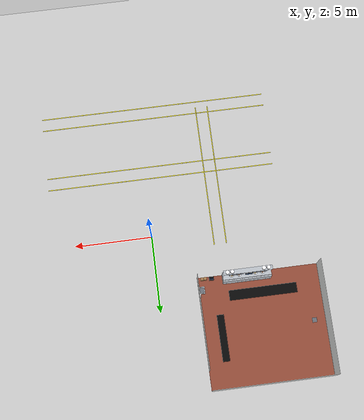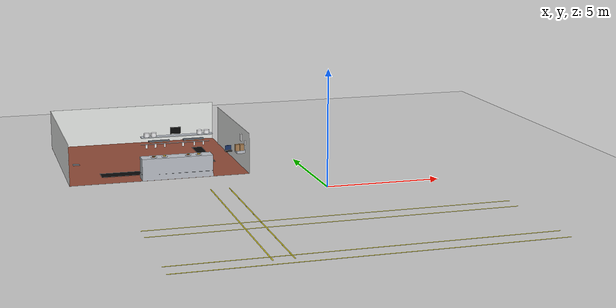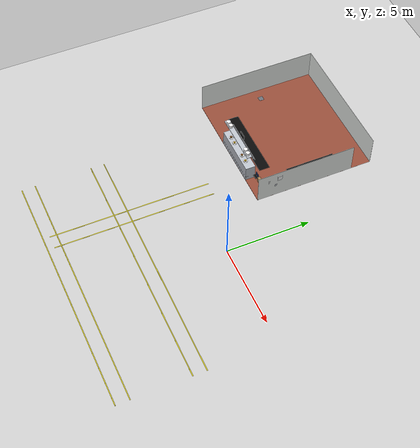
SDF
<sdf version="1.7">
 <world name="default">
  <model name="ground_plane">
   <static>1</static>
   <link name="link">
    <collision name="collision">
     <geometry><plane><normal>0 0 1</normal><size>100 100</size></plane></geometry>
     <surface><friction><ode><mu>100</mu><mu2>50</mu2></ode></friction></surface>
    </collision>
    <visual name="visual">
     <cast_shadows>0</cast_shadows>
     <geometry><plane><normal>0 0 1</normal><size>100 100</size></plane></geometry>
     <material>
      <script><uri>file://media/materials/scripts/gazebo.material</uri><name>Gazebo/Grey</name></script>
     </material>
    </visual>
   </link>
  </model>
  <model name="tunibot_layout">
   <static>1</static>
   <link name="lane_2_l">
    <pose>-4.800 -3.800 0.002 0 0 -1.5708</pose>
    <visual name="lane_2_l_visual">
     <geometry><box><size>9.600 0.050 0.004</size></box></geometry>
     <material>
      <script><uri>file://media/materials/scripts/gazebo.material</uri><name>Gazebo/Yellow</name></script>
     </material>
    </visual>
   </link>
   <link name="lane_2_r">
    <pose>-4.000 -3.800 0.002 0 0 -1.5708</pose>
    <visual name="lane_2_r_visual">
     <geometry><box><size>9.600 0.050 0.004</size></box></geometry>
     <material>
      <script><uri>file://media/materials/scripts/gazebo.material</uri><name>Gazebo/Yellow</name></script>
     </material>
    </visual>
   </link>
   <link name="lane_4_l">
    <pose>-1.100 -4.800 0.002 0 0 0.0000</pose>
    <visual name="lane_4_l_visual">
     <geometry><box><size>15.000 0.050 0.004</size></box></geometry>
     <material>
      <script><uri>file://media/materials/scripts/gazebo.material</uri><name>Gazebo/Yellow</name></script>
     </material>
    </visual>
   </link>
   <link name="lane_4_r">
    <pose>-1.100 -4.000 0.002 0 0 0.0000</pose>
    <visual name="lane_4_r_visual">
     <geometry><box><size>15.000 0.050 0.004</size></box></geometry>
     <material>
      <script><uri>file://media/materials/scripts/gazebo.material</uri><name>Gazebo/Yellow</name></script>
     </material>
    </visual>
   </link>
   <link name="lane_5_l">
    <pose>-1.100 -9.000 0.002 0 0 0.0000</pose>
    <visual name="lane_5_l_visual">
     <geometry><box><size>15.000 0.050 0.004</size></box></geometry>
     <material>
      <script><uri>file://media/materials/scripts/gazebo.material</uri><name>Gazebo/Yellow</name></script>
     </material>
    </visual>
   </link>
   <link name="lane_5_r">
    <pose>-1.100 -8.200 0.002 0 0 0.0000</pose>
    <visual name="lane_5_r_visual">
     <geometry><box><size>15.000 0.050 0.004</size></box></geometry>
     <material>
      <script><uri>file://media/materials/scripts/gazebo.material</uri><name>Gazebo/Yellow</name></script>
     </material>
    </visual>
   </link>
   <link name="k_floor">
    <visual name="k_floor_v0">
     <pose>-6.495 6.707 0.002 0 0 0.0000</pose>
     <geometry><box><size>7.840 7.265 0.003</size></box></geometry>
     <material>
      <ambient>0.35 0.18 0.13 1</ambient>
      <diffuse>0.58 0.30 0.22 1</diffuse>
      <specular>0.30 0.30 0.30 1</specular>
     </material>
    </visual>
    <visual name="k_floor_v1">
     <pose>-6.700 4.300 0.004 0 0 0.0000</pose>
     <geometry><box><size>0.300 0.300 0.002</size></box></geometry>
     <material>
      <ambient>0.25 0.26 0.28 1</ambient>
      <diffuse>0.42 0.44 0.47 1</diffuse>
      <specular>0.60 0.60 0.60 1</specular>
     </material>
    </visual>
    <visual name="k_floor_v2">
     <pose>-3.750 7.200 0.004 0 0 0.0000</pose>
     <geometry><box><size>0.300 0.300 0.002</size></box></geometry>
     <material>
      <ambient>0.25 0.26 0.28 1</ambient>
      <diffuse>0.42 0.44 0.47 1</diffuse>
      <specular>0.60 0.60 0.60 1</specular>
     </material>
    </visual>
    <visual name="k_floor_v3">
     <pose>-9.700 6.700 0.004 0 0 0.0000</pose>
     <geometry><box><size>0.300 0.300 0.002</size></box></geometry>
     <material>
      <ambient>0.25 0.26 0.28 1</ambient>
      <diffuse>0.42 0.44 0.47 1</diffuse>
      <specular>0.60 0.60 0.60 1</specular>
     </material>
    </visual>
    <visual name="k_floor_v4">
     <pose>-6.700 4.450 0.010 0 0 0.0000</pose>
     <geometry><box><size>4.400 0.660 0.013</size></box></geometry>
     <material>
      <ambient>0.02 0.02 0.02 1</ambient>
      <diffuse>0.03 0.03 0.03 1</diffuse>
      <specular>0.15 0.15 0.15 1</specular>
     </material>
    </visual>
    <visual name="k_floor_v5">
     <pose>-3.750 7.100 0.010 0 0 0.0000</pose>
     <geometry><box><size>0.460 3.000 0.013</size></box></geometry>
     <material>
      <ambient>0.02 0.02 0.02 1</ambient>
      <diffuse>0.03 0.03 0.03 1</diffuse>
      <specular>0.15 0.15 0.15 1</specular>
     </material>
    </visual>
    <visual name="k_floor_v6">
     <pose>-10.409 6.707 0.900 0 0 0.0000</pose>
     <geometry><box><size>0.012 7.265 1.800</size></box></geometry>
     <material>
      <ambient>0.56 0.56 0.56 1</ambient>
      <diffuse>0.93 0.94 0.93 1</diffuse>
      <specular>0.50 0.50 0.50 1</specular>
     </material>
    </visual>
    <visual name="k_floor_v7">
     <pose>-6.495 10.334 0.900 0 0 0.0000</pose>
     <geometry><box><size>7.840 0.012 1.800</size></box></geometry>
     <material>
      <ambient>0.56 0.56 0.56 1</ambient>
      <diffuse>0.93 0.94 0.93 1</diffuse>
      <specular>0.50 0.50 0.50 1</specular>
     </material>
    </visual>
    <visual name="k_floor_v8">
     <pose>-2.581 6.088 0.900 0 0 0.0000</pose>
     <geometry><box><size>0.012 6.025 1.800</size></box></geometry>
     <material>
      <ambient>0.56 0.56 0.56 1</ambient>
      <diffuse>0.93 0.94 0.93 1</diffuse>
      <specular>0.50 0.50 0.50 1</specular>
     </material>
    </visual>
   </link>
   <link name="k_pass">
    <collision name="k_pass_c0">
     <pose>-5.750 3.375 0.475 0 0 0.0000</pose>
     <geometry><box><size>3.100 0.600 0.950</size></box></geometry>
    </collision>
    <visual name="k_pass_v0">
     <pose>-5.750 3.375 0.475 0 0 0.0000</pose>
     <geometry><box><size>3.100 0.600 0.950</size></box></geometry>
     <material>
      <ambient>0.44 0.46 0.47 1</ambient>
      <diffuse>0.74 0.76 0.79 1</diffuse>
      <specular>0.80 0.80 0.80 1</specular>
     </material>
    </visual>
    <visual name="k_pass_v1">
     <pose>-5.750 3.375 0.260 0 0 0.0000</pose>
     <geometry><box><size>3.100 0.600 0.020</size></box></geometry>
     <material>
      <ambient>0.25 0.26 0.28 1</ambient>
      <diffuse>0.42 0.44 0.47 1</diffuse>
      <specular>0.15 0.15 0.15 1</specular>
     </material>
    </visual>
    <visual name="k_pass_v2">
     <pose>-6.500 3.375 1.650 0 0 0.0000</pose>
     <geometry><box><size>0.900 0.150 0.060</size></box></geometry>
     <material>
      <ambient>0.25 0.26 0.28 1</ambient>
      <diffuse>0.42 0.44 0.47 1</diffuse>
      <specular>0.15 0.15 0.15 1</specular>
     </material>
    </visual>
    <visual name="k_pass_v3">
     <pose>-6.500 3.375 1.610 0 0 0.0000</pose>
     <geometry><box><size>0.840 0.090 0.020</size></box></geometry>
     <material>
      <ambient>0.60 0.27 0.06 1</ambient>
      <diffuse>1.00 0.45 0.10 1</diffuse>
      <specular>0.15 0.15 0.15 1</specular>
      <emissive>1.00 0.35 0.05 1</emissive>
     </material>
    </visual>
    <visual name="k_pass_v4">
     <pose>-6.750 3.320 0.960 0 0 0</pose>
     <geometry><cylinder><radius>0.130</radius><length>0.020</length></cylinder></geometry>
     <material>
      <ambient>0.58 0.58 0.59 1</ambient>
      <diffuse>0.97 0.97 0.98 1</diffuse>
      <specular>0.60 0.60 0.60 1</specular>
     </material>
    </visual>
    <visual name="k_pass_v5">
     <pose>-6.750 3.320 0.985 0 0 0</pose>
     <geometry><cylinder><radius>0.070</radius><length>0.030</length></cylinder></geometry>
     <material>
      <ambient>0.33 0.18 0.07 1</ambient>
      <diffuse>0.55 0.30 0.12 1</diffuse>
      <specular>0.15 0.15 0.15 1</specular>
     </material>
    </visual>
    <visual name="k_pass_v6">
     <pose>-6.710 3.300 0.995 0 0 0</pose>
     <geometry><sphere><radius>0.025</radius></sphere></geometry>
     <material>
      <ambient>0.12 0.33 0.09 1</ambient>
      <diffuse>0.20 0.55 0.15 1</diffuse>
      <specular>0.20 0.20 0.20 1</specular>
     </material>
    </visual>
    <visual name="k_pass_v7">
     <pose>-6.280 3.320 0.960 0 0 0</pose>
     <geometry><cylinder><radius>0.130</radius><length>0.020</length></cylinder></geometry>
     <material>
      <ambient>0.58 0.58 0.59 1</ambient>
      <diffuse>0.97 0.97 0.98 1</diffuse>
      <specular>0.60 0.60 0.60 1</specular>
     </material>
    </visual>
    <visual name="k_pass_v8">
     <pose>-6.280 3.320 0.985 0 0 0</pose>
     <geometry><cylinder><radius>0.070</radius><length>0.030</length></cylinder></geometry>
     <material>
      <ambient>0.51 0.39 0.12 1</ambient>
      <diffuse>0.85 0.65 0.20 1</diffuse>
      <specular>0.15 0.15 0.15 1</specular>
     </material>
    </visual>
    <visual name="k_pass_v9">
     <pose>-6.240 3.300 0.995 0 0 0</pose>
     <geometry><sphere><radius>0.025</radius></sphere></geometry>
     <material>
      <ambient>0.12 0.33 0.09 1</ambient>
      <diffuse>0.20 0.55 0.15 1</diffuse>
      <specular>0.20 0.20 0.20 1</specular>
     </material>
    </visual>
    <visual name="k_pass_v10">
     <pose>-5.000 3.375 1.650 0 0 0.0000</pose>
     <geometry><box><size>0.900 0.150 0.060</size></box></geometry>
     <material>
      <ambient>0.25 0.26 0.28 1</ambient>
      <diffuse>0.42 0.44 0.47 1</diffuse>
      <specular>0.15 0.15 0.15 1</specular>
     </material>
    </visual>
    <visual name="k_pass_v11">
     <pose>-5.000 3.375 1.610 0 0 0.0000</pose>
     <geometry><box><size>0.840 0.090 0.020</size></box></geometry>
     <material>
      <ambient>0.60 0.27 0.06 1</ambient>
      <diffuse>1.00 0.45 0.10 1</diffuse>
      <specular>0.15 0.15 0.15 1</specular>
      <emissive>1.00 0.35 0.05 1</emissive>
     </material>
    </visual>
    <visual name="k_pass_v12">
     <pose>-5.250 3.320 0.960 0 0 0</pose>
     <geometry><cylinder><radius>0.130</radius><length>0.020</length></cylinder></geometry>
     <material>
      <ambient>0.58 0.58 0.59 1</ambient>
      <diffuse>0.97 0.97 0.98 1</diffuse>
      <specular>0.60 0.60 0.60 1</specular>
     </material>
    </visual>
    <visual name="k_pass_v13">
     <pose>-5.250 3.320 0.985 0 0 0</pose>
     <geometry><cylinder><radius>0.070</radius><length>0.030</length></cylinder></geometry>
     <material>
      <ambient>0.33 0.18 0.07 1</ambient>
      <diffuse>0.55 0.30 0.12 1</diffuse>
      <specular>0.15 0.15 0.15 1</specular>
     </material>
    </visual>
    <visual name="k_pass_v14">
     <pose>-5.210 3.300 0.995 0 0 0</pose>
     <geometry><sphere><radius>0.025</radius></sphere></geometry>
     <material>
      <ambient>0.12 0.33 0.09 1</ambient>
      <diffuse>0.20 0.55 0.15 1</diffuse>
      <specular>0.20 0.20 0.20 1</specular>
     </material>
    </visual>
    <visual name="k_pass_v15">
     <pose>-4.780 3.320 0.960 0 0 0</pose>
     <geometry><cylinder><radius>0.130</radius><length>0.020</length></cylinder></geometry>
     <material>
      <ambient>0.58 0.58 0.59 1</ambient>
      <diffuse>0.97 0.97 0.98 1</diffuse>
      <specular>0.60 0.60 0.60 1</specular>
     </material>
    </visual>
    <visual name="k_pass_v16">
     <pose>-4.780 3.320 0.985 0 0 0</pose>
     <geometry><cylinder><radius>0.070</radius><length>0.030</length></cylinder></geometry>
     <material>
      <ambient>0.51 0.39 0.12 1</ambient>
      <diffuse>0.85 0.65 0.20 1</diffuse>
      <specular>0.15 0.15 0.15 1</specular>
     </material>
    </visual>
    <visual name="k_pass_v17">
     <pose>-4.740 3.300 0.995 0 0 0</pose>
     <geometry><sphere><radius>0.025</radius></sphere></geometry>
     <material>
      <ambient>0.12 0.33 0.09 1</ambient>
      <diffuse>0.20 0.55 0.15 1</diffuse>
      <specular>0.20 0.20 0.20 1</specular>
     </material>
    </visual>
    <visual name="k_pass_v18">
     <pose>-5.750 3.270 1.875 0 0 0.0000</pose>
     <geometry><box><size>3.100 0.300 0.030</size></box></geometry>
     <material>
      <ambient>0.44 0.46 0.47 1</ambient>
      <diffuse>0.74 0.76 0.79 1</diffuse>
      <specular>0.80 0.80 0.80 1</specular>
     </material>
    </visual>
    <visual name="k_pass_v19">
     <pose>-7.050 3.270 1.971 0 0 0</pose>
     <geometry><cylinder><radius>0.120</radius><length>0.162</length></cylinder></geometry>
     <material>
      <ambient>0.58 0.58 0.59 1</ambient>
      <diffuse>0.97 0.97 0.98 1</diffuse>
      <specular>0.60 0.60 0.60 1</specular>
     </material>
    </visual>
    <visual name="k_pass_v20">
     <pose>-6.750 3.270 1.971 0 0 0</pose>
     <geometry><cylinder><radius>0.120</radius><length>0.162</length></cylinder></geometry>
     <material>
      <ambient>0.58 0.58 0.59 1</ambient>
      <diffuse>0.97 0.97 0.98 1</diffuse>
      <specular>0.60 0.60 0.60 1</specular>
     </material>
    </visual>
    <visual name="k_pass_v21">
     <pose>-4.750 3.270 1.971 0 0 0</pose>
     <geometry><cylinder><radius>0.120</radius><length>0.162</length></cylinder></geometry>
     <material>
      <ambient>0.58 0.58 0.59 1</ambient>
      <diffuse>0.97 0.97 0.98 1</diffuse>
      <specular>0.60 0.60 0.60 1</specular>
     </material>
    </visual>
    <visual name="k_pass_v22">
     <pose>-4.450 3.270 1.971 0 0 0</pose>
     <geometry><cylinder><radius>0.120</radius><length>0.162</length></cylinder></geometry>
     <material>
      <ambient>0.58 0.58 0.59 1</ambient>
      <diffuse>0.97 0.97 0.98 1</diffuse>
      <specular>0.60 0.60 0.60 1</specular>
     </material>
    </visual>
    <visual name="k_pass_v23">
     <pose>-5.750 3.655 1.460 0 0 0.0000</pose>
     <geometry><box><size>3.000 0.030 0.020</size></box></geometry>
     <material>
      <ambient>0.44 0.46 0.47 1</ambient>
      <diffuse>0.74 0.76 0.79 1</diffuse>
      <specular>0.80 0.80 0.80 1</specular>
     </material>
    </visual>
    <visual name="k_pass_v24">
     <pose>-7.000 3.657 1.370 0 0 0.0000</pose>
     <geometry><box><size>0.080 0.005 0.160</size></box></geometry>
     <material>
      <ambient>0.57 0.57 0.57 1</ambient>
      <diffuse>0.95 0.95 0.95 1</diffuse>
      <specular>0.15 0.15 0.15 1</specular>
     </material>
    </visual>
    <visual name="k_pass_v25">
     <pose>-6.600 3.657 1.370 0 0 0.0000</pose>
     <geometry><box><size>0.080 0.005 0.160</size></box></geometry>
     <material>
      <ambient>0.57 0.57 0.57 1</ambient>
      <diffuse>0.95 0.95 0.95 1</diffuse>
      <specular>0.15 0.15 0.15 1</specular>
     </material>
    </visual>
    <visual name="k_pass_v26">
     <pose>-6.200 3.657 1.370 0 0 0.0000</pose>
     <geometry><box><size>0.080 0.005 0.160</size></box></geometry>
     <material>
      <ambient>0.57 0.57 0.57 1</ambient>
      <diffuse>0.95 0.95 0.95 1</diffuse>
      <specular>0.15 0.15 0.15 1</specular>
     </material>
    </visual>
    <visual name="k_pass_v27">
     <pose>-5.400 3.657 1.370 0 0 0.0000</pose>
     <geometry><box><size>0.080 0.005 0.160</size></box></geometry>
     <material>
      <ambient>0.57 0.57 0.57 1</ambient>
      <diffuse>0.95 0.95 0.95 1</diffuse>
      <specular>0.15 0.15 0.15 1</specular>
     </material>
    </visual>
    <visual name="k_pass_v28">
     <pose>-4.900 3.657 1.370 0 0 0.0000</pose>
     <geometry><box><size>0.080 0.005 0.160</size></box></geometry>
     <material>
      <ambient>0.57 0.57 0.57 1</ambient>
      <diffuse>0.95 0.95 0.95 1</diffuse>
      <specular>0.15 0.15 0.15 1</specular>
     </material>
    </visual>
    <visual name="k_pass_v29">
     <pose>-4.500 3.657 1.370 0 0 0.0000</pose>
     <geometry><box><size>0.080 0.005 0.160</size></box></geometry>
     <material>
      <ambient>0.57 0.57 0.57 1</ambient>
      <diffuse>0.95 0.95 0.95 1</diffuse>
      <specular>0.15 0.15 0.15 1</specular>
     </material>
    </visual>
    <visual name="k_pass_v30">
     <pose>-5.750 3.525 2.040 0 0 0.0000</pose>
     <geometry><box><size>0.460 0.050 0.280</size></box></geometry>
     <material>
      <ambient>0.02 0.02 0.02 1</ambient>
      <diffuse>0.03 0.03 0.03 1</diffuse>
      <specular>0.15 0.15 0.15 1</specular>
     </material>
    </visual>
    <visual name="k_pass_v31">
     <pose>-5.750 3.558 2.040 0 0 0.0000</pose>
     <geometry><box><size>0.400 0.005 0.220</size></box></geometry>
     <material>
      <ambient>0.06 0.18 0.36 1</ambient>
      <diffuse>0.10 0.30 0.60 1</diffuse>
      <specular>0.15 0.15 0.15 1</specular>
      <emissive>0.15 0.35 0.70 1</emissive>
     </material>
    </visual>
   </link>
   <link name="k_handsink_pass">
    <visual name="k_handsink_pass_v0">
     <pose>-2.765 4.025 0.825 0 0 0.0000</pose>
     <geometry><box><size>0.380 0.450 0.150</size></box></geometry>
     <material>
      <ambient>0.44 0.46 0.47 1</ambient>
      <diffuse>0.74 0.76 0.79 1</diffuse>
      <specular>0.80 0.80 0.80 1</specular>
     </material>
    </visual>
    <visual name="k_handsink_pass_v1">
     <pose>-2.765 4.025 0.883 0 0 0.0000</pose>
     <geometry><box><size>0.280 0.350 0.045</size></box></geometry>
     <material>
      <ambient>0.25 0.26 0.28 1</ambient>
      <diffuse>0.42 0.44 0.47 1</diffuse>
      <specular>0.90 0.90 0.90 1</specular>
     </material>
    </visual>
    <visual name="k_handsink_pass_v2">
     <pose>-2.615 4.025 1.010 0 0 0</pose>
     <geometry><cylinder><radius>0.012</radius><length>0.220</length></cylinder></geometry>
     <material>
      <ambient>0.44 0.46 0.47 1</ambient>
      <diffuse>0.74 0.76 0.79 1</diffuse>
      <specular>1.00 1.00 1.00 1</specular>
     </material>
    </visual>
    <visual name="k_handsink_pass_v3">
     <pose>-2.595 3.740 1.250 0 0 0.0000</pose>
     <geometry><box><size>0.060 0.080 0.200</size></box></geometry>
     <material>
      <ambient>0.57 0.57 0.57 1</ambient>
      <diffuse>0.95 0.95 0.95 1</diffuse>
      <specular>0.15 0.15 0.15 1</specular>
     </material>
    </visual>
    <visual name="k_handsink_pass_v4">
     <pose>-2.595 4.410 1.350 0 0 0.0000</pose>
     <geometry><box><size>0.100 0.280 0.300</size></box></geometry>
     <material>
      <ambient>0.57 0.57 0.57 1</ambient>
      <diffuse>0.95 0.95 0.95 1</diffuse>
      <specular>0.15 0.15 0.15 1</specular>
     </material>
    </visual>
    <visual name="k_handsink_pass_v5">
     <pose>-3.450 3.375 1.025 0 0 0.0000</pose>
     <geometry><box><size>0.300 0.250 0.050</size></box></geometry>
     <material>
      <ambient>0.02 0.02 0.02 1</ambient>
      <diffuse>0.03 0.03 0.03 1</diffuse>
      <specular>0.15 0.15 0.15 1</specular>
     </material>
    </visual>
    <visual name="k_handsink_pass_v6">
     <pose>-3.450 3.420 1.150 0 0 0.0000</pose>
     <geometry><box><size>0.260 0.030 0.200</size></box></geometry>
     <material>
      <ambient>0.06 0.12 0.24 1</ambient>
      <diffuse>0.10 0.20 0.40 1</diffuse>
      <specular>0.15 0.15 0.15 1</specular>
      <emissive>0.10 0.25 0.50 1</emissive>
     </material>
    </visual>
    <visual name="k_handsink_pass_v7">
     <pose>-3.050 3.365 1.140 0 0 0.0000</pose>
     <geometry><box><size>0.180 0.170 0.280</size></box></geometry>
     <material>
      <ambient>0.40 0.30 0.19 1</ambient>
      <diffuse>0.66 0.50 0.32 1</diffuse>
      <specular>0.15 0.15 0.15 1</specular>
     </material>
    </visual>
    <visual name="k_handsink_pass_v8">
     <pose>-2.850 3.365 1.140 0 0 0.0000</pose>
     <geometry><box><size>0.180 0.170 0.280</size></box></geometry>
     <material>
      <ambient>0.40 0.30 0.19 1</ambient>
      <diffuse>0.66 0.50 0.32 1</diffuse>
      <specular>0.15 0.15 0.15 1</specular>
     </material>
    </visual>
   </link>
  </model>
 </world>
</sdf>
